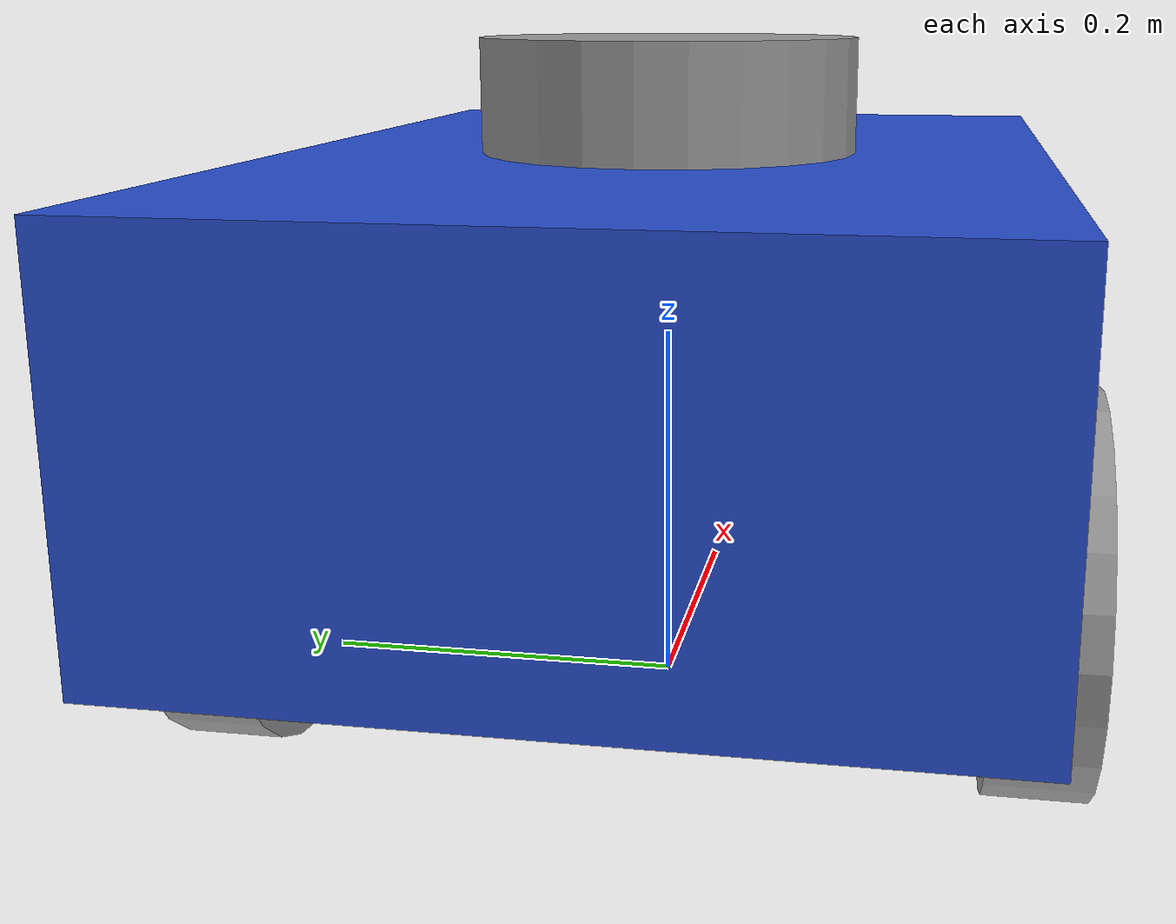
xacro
<?xml version="1.0"?>
<robot xmlns:xacro="http://www.ros.org/wiki/xacro">

    <xacro:property name="base_length" value="0.6" />
    <xacro:property name="base_width" value="0.4" />
    <xacro:property name="base_height" value="0.2" />
    <xacro:property name="wheel_radius" value="0.1" />
    <xacro:property name="wheel_length" value="0.05" />

    <!-- ros2 launch urdf_tutorial display.launch.py model:=/home/cagla/Desktop/deneme/my_robot.urdf.xacro -->

    <link name="base_footprint" />

     <joint name="base_joint" type="fixed">
        <parent link="base_footprint" />
        <child link="base_link" />
        <origin xyz="0 0 0.2" rpy="0 0 0"/>
    </joint>

    <link name="base_link">
        <visual>
            <geometry>
                <box size="${base_length} ${base_width} ${base_height}" />
            </geometry>
            <origin xyz="0 0 0" rpy="0 0 0" />
            <material name="blue" />
        </visual>
        <collision>
            <geometry>
                <box size="${base_length} ${base_width} ${base_height}" />
            </geometry>
            <origin xyz="0 0 0" rpy="0 0 0" />
        </collision>
        <xacro:box_inertia m="5.0" l="${2*base_length}" w="${2*base_width}" h="${2*base_height}"
                           xyz="0 0 0" rpy="0 0 0" />
    </link>

     <joint name="base_scan_joint" type="fixed">
        <parent link="base_link"/>
        <child link="base_scan"/>
        <origin xyz="0 0 0.13" rpy="0 0 0"/>
    </joint>

    <link name="base_scan">
        <visual>
            <geometry>
                <cylinder radius="${wheel_radius}" length="0.06"/>
            </geometry>
            <origin xyz="0 0 0" rpy="0 0 0" />
            <material name="grey" />
        </visual>

        <collision>
                <geometry>
                    <cylinder radius="${wheel_radius}" length="0.06" />
                </geometry>
                <origin xyz="0 0 0" rpy="0 0 0" />
            </collision>
            <xacro:cylinder_inertia m="1.0" r="${2*wheel_radius}" h="${2*0.06}"
                                    xyz="0 0 0" rpy="0 0 0" />
    </link>

    <joint name="base_left_wheel_joint" type="continuous">
        <parent link="base_link" />
        <child link="left_wheel" />
        <origin xyz="-0.1 0.2 -0.1" rpy="0 0 0"/>
        <axis xyz="0 1 0"/>
    </joint>

       <link name="left_wheel">
        <visual>
            <geometry>
                <cylinder radius="${wheel_radius}" length="${wheel_length}"/>
            </geometry>
            <origin xyz="0 0 0" rpy="1.57 0 0" />
            <material name="grey" />
        </visual>

         <collision>
                <geometry>
                    <cylinder radius="${wheel_radius}" length="${wheel_length}" />
                </geometry>
                <origin xyz="0 0 0" rpy="${pi / 2.0} 0 0" />
            </collision>
            <xacro:cylinder_inertia m="1.0" r="${2*wheel_radius}" h="${2*wheel_length}"
                                    xyz="0 0 0" rpy="${pi / 2.0} 0 0" />

    </link>

 <joint name="base_right_wheel_joint" type="continuous">
        <parent link="base_link" />
        <child link="right_wheel" />
        <origin xyz="-0.1 -0.2 -0.1" rpy="0 0 0"/>
        <axis xyz="0 1 0" />
    </joint>

    <link name="right_wheel">
        <visual>
            <geometry>
                <cylinder radius="${wheel_radius}" length="${wheel_length}"/>
            </geometry>
            <origin xyz="0 0 0" rpy="1.57 0 0" />
            <material name="grey" />
        </visual>

         <collision>
                <geometry>
                    <cylinder radius="${wheel_radius}" length="${wheel_length}" />
                </geometry>
                <origin xyz="0 0 0" rpy="${pi / 2.0} 0 0" />
            </collision>
            <xacro:cylinder_inertia m="1.0" r="${2*wheel_radius}" h="${2*wheel_length}"
                                    xyz="0 0 0" rpy="${pi / 2.0} 0 0" />

    </link>

   <joint name="base_caster_wheel_joint" type="fixed">
        <parent link="base_link"/>
        <child link="caster_wheel"/>
        <origin xyz="0.2 0 -0.15" rpy="0 0 0"/>
    </joint>

    <link name="caster_wheel">
        <visual>
            <geometry>
                <sphere radius="${wheel_radius / 2.0}" />
            </geometry>
            <origin xyz="0 0 0" rpy="0 0 0" />
            <material name="grey" />
        </visual>

        <collision>
            <geometry>
                <sphere radius="${wheel_radius / 2.0}" />
            </geometry>
            <origin xyz="0 0 0" rpy="0 0 0" />
        </collision>
        <xacro:sphere_inertia m="0.5" r="${2*wheel_radius / 2.0}"
                              xyz="0 0 0" rpy="0 0 0" />
    </link>

</robot>
